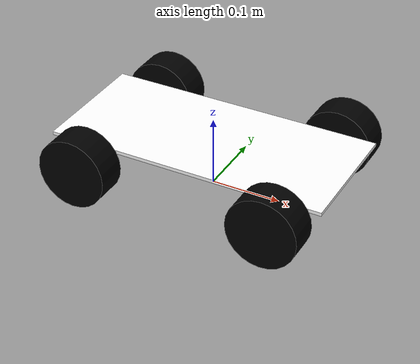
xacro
<?xml version="1.0"?>
<robot xmlns:xacro="http://www.ros.org/wiki/xacro" >

    <xacro:include filename="inertial_macros.xacro"/>

    <material name="white">
        <color rgba="1 1 1 1" />
    </material>

    <material name="orange">
        <color rgba="1 0.3 0.1 1"/>
    </material>

    <material name="blue">
        <color rgba="0.2 0.2 1 1"/>
    </material>

    <material name="black">
        <color rgba="0 0 0 1"/>
    </material>

    <!-- BASE LINK -->

    <link name="base_link">

    </link>

    <!-- CHASSIS LINK -->

    <joint name="chassis_joint" type="fixed">
        <parent link="base_link"/>
        <child link="chassis"/>
    </joint>

    <link name="chassis">
        <visual>
            <origin xyz="0 0 0.07"/>
            <geometry>
                <box size="0.4 0.18 0.005"/>
            </geometry>
            <material name="white"/>
        </visual>
        <collision>
            <origin xyz="0 0 0.07"/>
            <geometry>
                <box size="0.4 0.18 0.005"/>
            </geometry>
        </collision>
        <xacro:inertial_box mass="0.5" x="0.4" y="0.18" z="0.005">
            <origin xyz="0 0 0.07" rpy="0.0 0.0 0.0"/>
        </xacro:inertial_box>
    </link>
    <gazebo reference="chassis">
        <material>Gazebo/White</material>
    </gazebo>

    <!-- LEFT FRONT WHEEL LINK -->

    <joint name="left_front_wheel_joint" type="continuous">
        <parent link="base_link"/>
        <child link="left_front_wheel"/>
        <origin xyz="0.14 0.1175 0.05" rpy="-${pi/2} 0 0" />
        <axis xyz="0 0 1"/>
    </joint>

    <link name="left_front_wheel">
        <visual>
            <geometry>
                <cylinder radius="0.05" length="0.045"/>
            </geometry>
            <material name="black"/>
        </visual>
        <collision>
            <geometry>
                <cylinder radius="0.05" length="0.045"/>
            </geometry>
        </collision>
        <xacro:inertial_cylinder mass="0.25" length="0.045" radius="0.05">
            <origin xyz="0 0 0" rpy="0.0 0.0 0.0"/>
        </xacro:inertial_cylinder>
    </link>
    <gazebo reference="left_front_wheel">
        <material>Gazebo/Black</material>
        <mu1 value="0.5"></mu1>
        <mu2 value="0.4"></mu2>
    </gazebo>

    <!-- LEFT REAR WHEEL LINK -->

    <joint name="left_rear_wheel_joint" type="continuous">
        <parent link="base_link"/>
        <child link="left_rear_wheel"/>
        <origin xyz="-0.14 0.1175 0.05" rpy="${pi/2} 0 0" />
        <axis xyz="0 0 -1"/>
    </joint>

    <link name="left_rear_wheel">
        <visual>
            <geometry>
                <cylinder radius="0.05" length="0.045"/>
            </geometry>
            <material name="black"/>
        </visual>
        <collision>
            <geometry>
                <cylinder radius="0.05" length="0.045"/>
            </geometry>
        </collision>
        <xacro:inertial_cylinder mass="0.25" length="0.045" radius="0.05">
            <origin xyz="0 0 0" rpy="0.0 0.0 0.0"/>
        </xacro:inertial_cylinder>
    </link>
    <gazebo reference="left_rear_wheel">
        <material>Gazebo/Black</material>
        <mu1 value="0.5"></mu1>
        <mu2 value="0.4"></mu2>
    </gazebo>

    <!-- RIGHT FRONT WHEEL LINK -->

    <joint name="right_front_wheel_joint" type="continuous">
        <parent link="base_link"/>
        <child link="right_front_wheel"/>
        <origin xyz="0.14 -0.1175 0.05" rpy="-${pi/2} 0 0" />
        <axis xyz="0 0 1"/>
    </joint>

    <link name="right_front_wheel">
        <visual>
            <geometry>
                <cylinder radius="0.05" length="0.045"/>
            </geometry>
            <material name="black"/>
        </visual>
        <collision>
            <geometry>
                <cylinder radius="0.05" length="0.045"/>
            </geometry>
        </collision>
        <xacro:inertial_cylinder mass="0.25" length="0.045" radius="0.05">
            <origin xyz="0 0 0" rpy="0.0 0.0 0.0"/>
        </xacro:inertial_cylinder>
    </link>
    <gazebo reference="right_front_wheel">
        <material>Gazebo/Black</material>
        <mu1 value="0.5"></mu1>
        <mu2 value="0.4"></mu2>
    </gazebo>

    <!-- RIGHT REAR WHEEL LINK -->

    <joint name="right_rear_wheel_joint" type="continuous">
        <parent link="base_link"/>
        <child link="right_rear_wheel"/>
        <origin xyz="-0.14 -0.1175 0.05" rpy="${pi/2} 0 0" />
        <axis xyz="0 0 -1"/>
    </joint>

    <link name="right_rear_wheel">
        <visual>
            <geometry>
                <cylinder radius="0.05" length="0.045"/>
            </geometry>
            <material name="black"/>
        </visual>
        <collision>
            <geometry>
                <cylinder radius="0.05" length="0.045"/>
            </geometry>
        </collision>
        <xacro:inertial_cylinder mass="0.25" length="0.045" radius="0.05">
            <origin xyz="0 0 0" rpy="0.0 0.0 0.0"/>
        </xacro:inertial_cylinder>
    </link>
    <gazebo reference="right_rear_wheel">
        <material>Gazebo/Black</material>
        <mu1 value="0.5"></mu1>
        <mu2 value="0.4"></mu2>
    </gazebo>
</robot>
